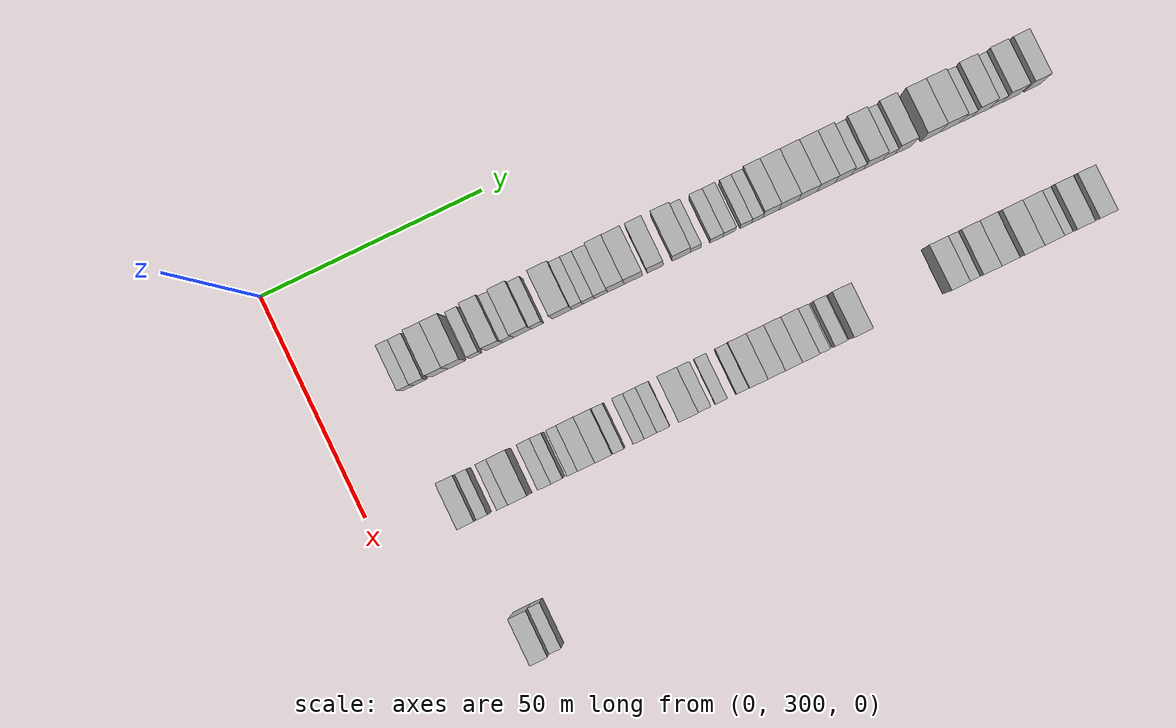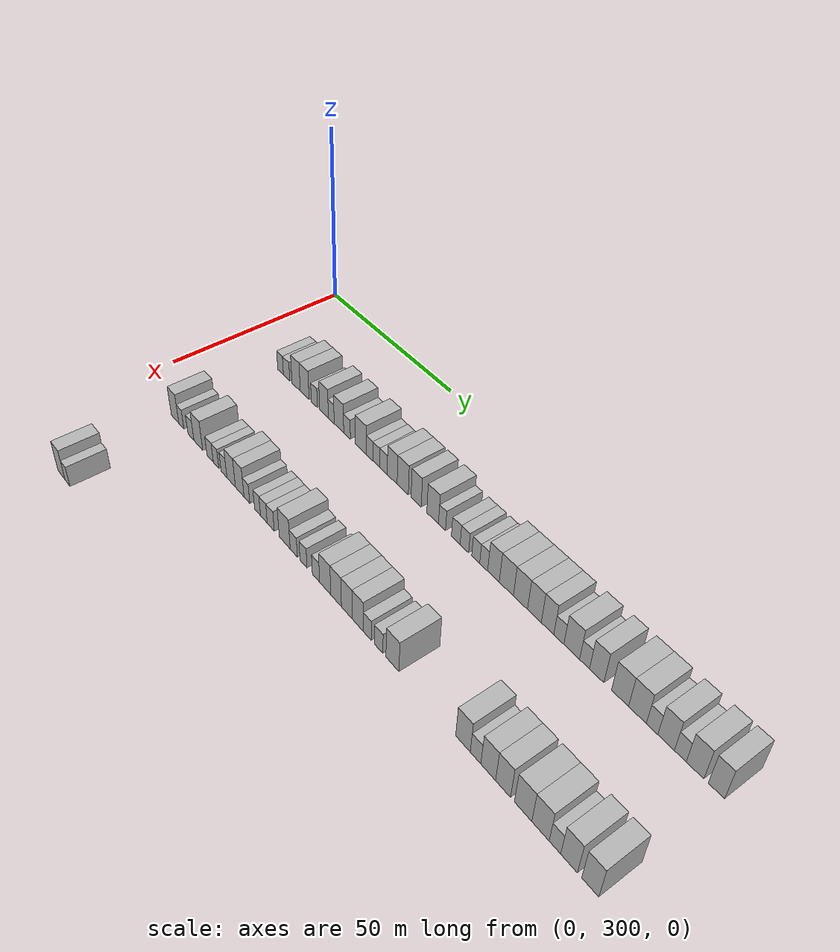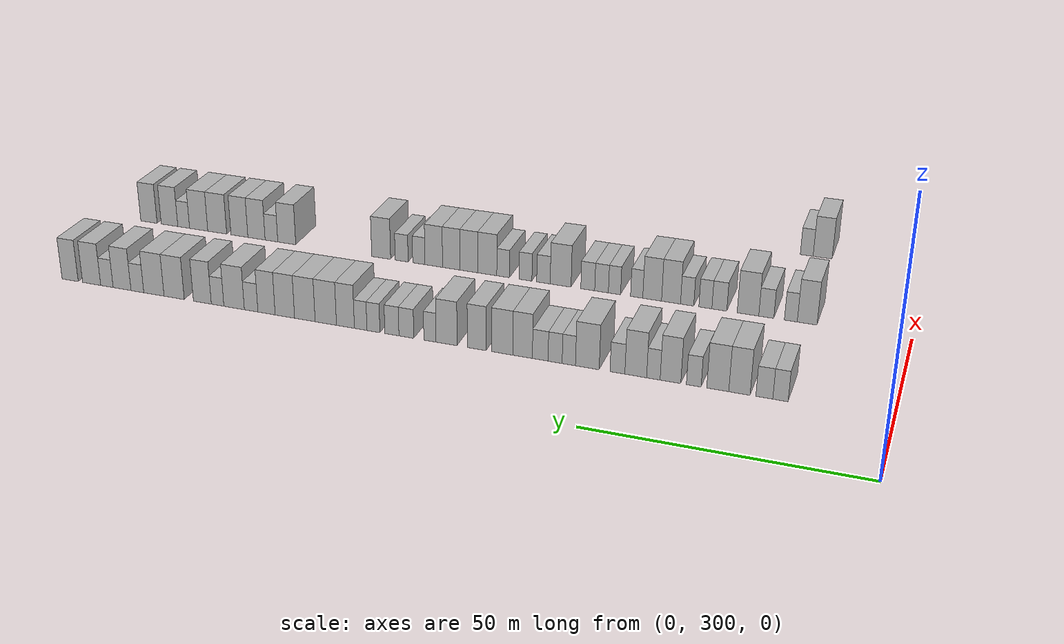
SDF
<sdf version="1.6">
 <world name="default">
  <model name="building_189">
   <static>1</static>
   <pose>25.0000 319.2529 0 0.000000 0.000000 0.000000</pose>
   <link name="link">
    <pose>0 0 3.00 0 0 0</pose>
    <collision name="collision"><geometry><box><size>10.0000 2.6458 6.0000</size></box></geometry></collision>
    <visual name="visual">
     <cast_shadows>0</cast_shadows>
     <geometry><box><size>10.0000 2.6458 6.0000</size></box></geometry>
     <material>
      <script>
       <uri>model://HANNAS_wall/materials/scripts</uri>
       <uri>model://HANNAS_wall/materials/textures</uri>
       <name>vrc/HANNAS_wall</name>
      </script>
     </material>
    </visual>
   </link>
  </model>
  <model name="building_190">
   <static>1</static>
   <pose>25.0000 322.0506 0 0.000000 0.000000 0.000000</pose>
   <link name="link">
    <pose>0 0 3.00 0 0 0</pose>
    <collision name="collision"><geometry><box><size>10.0000 2.9497 6.0000</size></box></geometry></collision>
    <visual name="visual">
     <cast_shadows>0</cast_shadows>
     <geometry><box><size>10.0000 2.9497 6.0000</size></box></geometry>
     <material>
      <script>
       <uri>model://HANNAS_wall/materials/scripts</uri>
       <uri>model://HANNAS_wall/materials/textures</uri>
       <name>vrc/HANNAS_wall</name>
      </script>
     </material>
    </visual>
   </link>
  </model>
  <model name="building_191">
   <static>1</static>
   <pose>25.0000 326.3966 0 0.000000 0.000000 0.000000</pose>
   <link name="link">
    <pose>0 0 4.50 0 0 0</pose>
    <collision name="collision"><geometry><box><size>10.0000 3.7424 9.0000</size></box></geometry></collision>
    <visual name="visual">
     <cast_shadows>0</cast_shadows>
     <geometry><box><size>10.0000 3.7424 9.0000</size></box></geometry>
     <material>
      <script>
       <uri>model://HANNAS_wall/materials/scripts</uri>
       <uri>model://HANNAS_wall/materials/textures</uri>
       <name>vrc/HANNAS_wall</name>
      </script>
     </material>
    </visual>
   </link>
  </model>
  <model name="building_192">
   <static>1</static>
   <pose>25.0000 330.2122 0 0.000000 0.000000 0.000000</pose>
   <link name="link">
    <pose>0 0 4.50 0 0 0</pose>
    <collision name="collision"><geometry><box><size>10.0000 3.8888 9.0000</size></box></geometry></collision>
    <visual name="visual">
     <cast_shadows>0</cast_shadows>
     <geometry><box><size>10.0000 3.8888 9.0000</size></box></geometry>
     <material>
      <script>
       <uri>model://HANNAS_wall/materials/scripts</uri>
       <uri>model://HANNAS_wall/materials/textures</uri>
       <name>vrc/HANNAS_wall</name>
      </script>
     </material>
    </visual>
   </link>
  </model>
  <model name="building_193">
   <static>1</static>
   <pose>25.0000 334.4716 0 0.000000 0.000000 0.000000</pose>
   <link name="link">
    <pose>0 0 3.00 0 0 0</pose>
    <collision name="collision"><geometry><box><size>10.0000 2.6299 6.0000</size></box></geometry></collision>
    <visual name="visual">
     <cast_shadows>0</cast_shadows>
     <geometry><box><size>10.0000 2.6299 6.0000</size></box></geometry>
     <material>
      <script>
       <uri>model://HANNAS_wall/materials/scripts</uri>
       <uri>model://HANNAS_wall/materials/textures</uri>
       <name>vrc/HANNAS_wall</name>
      </script>
     </material>
    </visual>
   </link>
  </model>
  <model name="building_194">
   <static>1</static>
   <pose>25.0000 338.6476 0 0.000000 0.000000 0.000000</pose>
   <link name="link">
    <pose>0 0 4.50 0 0 0</pose>
    <collision name="collision"><geometry><box><size>10.0000 3.7222 9.0000</size></box></geometry></collision>
    <visual name="visual">
     <cast_shadows>0</cast_shadows>
     <geometry><box><size>10.0000 3.7222 9.0000</size></box></geometry>
     <material>
      <script>
       <uri>model://HANNAS_wall/materials/scripts</uri>
       <uri>model://HANNAS_wall/materials/textures</uri>
       <name>vrc/HANNAS_wall</name>
      </script>
     </material>
    </visual>
   </link>
  </model>
  <model name="building_195">
   <static>1</static>
   <pose>25.0000 341.7327 0 0.000000 0.000000 0.000000</pose>
   <link name="link">
    <pose>0 0 3.00 0 0 0</pose>
    <collision name="collision"><geometry><box><size>10.0000 2.4480 6.0000</size></box></geometry></collision>
    <visual name="visual">
     <cast_shadows>0</cast_shadows>
     <geometry><box><size>10.0000 2.4480 6.0000</size></box></geometry>
     <material>
      <script>
       <uri>model://HANNAS_wall/materials/scripts</uri>
       <uri>model://HANNAS_wall/materials/textures</uri>
       <name>vrc/HANNAS_wall</name>
      </script>
     </material>
    </visual>
   </link>
  </model>
  <model name="building_196">
   <static>1</static>
   <pose>25.0000 344.9392 0 0.000000 0.000000 0.000000</pose>
   <link name="link">
    <pose>0 0 4.50 0 0 0</pose>
    <collision name="collision"><geometry><box><size>10.0000 3.9651 9.0000</size></box></geometry></collision>
    <visual name="visual">
     <cast_shadows>0</cast_shadows>
     <geometry><box><size>10.0000 3.9651 9.0000</size></box></geometry>
     <material>
      <script>
       <uri>model://HANNAS_wall/materials/scripts</uri>
       <uri>model://HANNAS_wall/materials/textures</uri>
       <name>vrc/HANNAS_wall</name>
      </script>
     </material>
    </visual>
   </link>
  </model>
  <model name="building_197">
   <static>1</static>
   <pose>25.0000 348.2840 0 0.000000 0.000000 0.000000</pose>
   <link name="link">
    <pose>0 0 3.00 0 0 0</pose>
    <collision name="collision"><geometry><box><size>10.0000 2.7245 6.0000</size></box></geometry></collision>
    <visual name="visual">
     <cast_shadows>0</cast_shadows>
     <geometry><box><size>10.0000 2.7245 6.0000</size></box></geometry>
     <material>
      <script>
       <uri>model://HANNAS_wall/materials/scripts</uri>
       <uri>model://HANNAS_wall/materials/textures</uri>
       <name>vrc/HANNAS_wall</name>
      </script>
     </material>
    </visual>
   </link>
  </model>
  <model name="building_198">
   <static>1</static>
   <pose>25.0000 353.8507 0 0.000000 0.000000 0.000000</pose>
   <link name="link">
    <pose>0 0 4.50 0 0 0</pose>
    <collision name="collision"><geometry><box><size>10.0000 4.4089 9.0000</size></box></geometry></collision>
    <visual name="visual">
     <cast_shadows>0</cast_shadows>
     <geometry><box><size>10.0000 4.4089 9.0000</size></box></geometry>
     <material>
      <script>
       <uri>model://HANNAS_wall/materials/scripts</uri>
       <uri>model://HANNAS_wall/materials/textures</uri>
       <name>vrc/HANNAS_wall</name>
      </script>
     </material>
    </visual>
   </link>
  </model>
  <model name="building_199">
   <static>1</static>
   <pose>25.0000 357.3013 0 0.000000 0.000000 0.000000</pose>
   <link name="link">
    <pose>0 0 3.00 0 0 0</pose>
    <collision name="collision"><geometry><box><size>10.0000 2.4924 6.0000</size></box></geometry></collision>
    <visual name="visual">
     <cast_shadows>0</cast_shadows>
     <geometry><box><size>10.0000 2.4924 6.0000</size></box></geometry>
     <material>
      <script>
       <uri>model://HANNAS_wall/materials/scripts</uri>
       <uri>model://HANNAS_wall/materials/textures</uri>
       <name>vrc/HANNAS_wall</name>
      </script>
     </material>
    </visual>
   </link>
  </model>
  <model name="building_200">
   <static>1</static>
   <pose>25.0000 359.8660 0 0.000000 0.000000 0.000000</pose>
   <link name="link">
    <pose>0 0 3.00 0 0 0</pose>
    <collision name="collision"><geometry><box><size>10.0000 2.6369 6.0000</size></box></geometry></collision>
    <visual name="visual">
     <cast_shadows>0</cast_shadows>
     <geometry><box><size>10.0000 2.6369 6.0000</size></box></geometry>
     <material>
      <script>
       <uri>model://HANNAS_wall/materials/scripts</uri>
       <uri>model://HANNAS_wall/materials/textures</uri>
       <name>vrc/HANNAS_wall</name>
      </script>
     </material>
    </visual>
   </link>
  </model>
  <model name="building_201">
   <static>1</static>
   <pose>25.0000 362.6691 0 0.000000 0.000000 0.000000</pose>
   <link name="link">
    <pose>0 0 3.00 0 0 0</pose>
    <collision name="collision"><geometry><box><size>10.0000 2.9695 6.0000</size></box></geometry></collision>
    <visual name="visual">
     <cast_shadows>0</cast_shadows>
     <geometry><box><size>10.0000 2.9695 6.0000</size></box></geometry>
     <material>
      <script>
       <uri>model://HANNAS_wall/materials/scripts</uri>
       <uri>model://HANNAS_wall/materials/textures</uri>
       <name>vrc/HANNAS_wall</name>
      </script>
     </material>
    </visual>
   </link>
  </model>
  <model name="building_202">
   <static>1</static>
   <pose>25.0000 366.0127 0 0.000000 0.000000 0.000000</pose>
   <link name="link">
    <pose>0 0 4.50 0 0 0</pose>
    <collision name="collision"><geometry><box><size>10.0000 3.7177 9.0000</size></box></geometry></collision>
    <visual name="visual">
     <cast_shadows>0</cast_shadows>
     <geometry><box><size>10.0000 3.7177 9.0000</size></box></geometry>
     <material>
      <script>
       <uri>model://HANNAS_wall/materials/scripts</uri>
       <uri>model://HANNAS_wall/materials/textures</uri>
       <name>vrc/HANNAS_wall</name>
      </script>
     </material>
    </visual>
   </link>
  </model>
  <model name="building_203">
   <static>1</static>
   <pose>25.0000 369.9389 0 0.000000 0.000000 0.000000</pose>
   <link name="link">
    <pose>0 0 4.50 0 0 0</pose>
    <collision name="collision"><geometry><box><size>10.0000 4.1347 9.0000</size></box></geometry></collision>
    <visual name="visual">
     <cast_shadows>0</cast_shadows>
     <geometry><box><size>10.0000 4.1347 9.0000</size></box></geometry>
     <material>
      <script>
       <uri>model://HANNAS_wall/materials/scripts</uri>
       <uri>model://HANNAS_wall/materials/textures</uri>
       <name>vrc/HANNAS_wall</name>
      </script>
     </material>
    </visual>
   </link>
  </model>
  <model name="building_204">
   <static>1</static>
   <pose>25.0000 374.8367 0 0.000000 0.000000 0.000000</pose>
   <link name="link">
    <pose>0 0 4.50 0 0 0</pose>
    <collision name="collision"><geometry><box><size>10.0000 3.6609 9.0000</size></box></geometry></collision>
    <visual name="visual">
     <cast_shadows>0</cast_shadows>
     <geometry><box><size>10.0000 3.6609 9.0000</size></box></geometry>
     <material>
      <script>
       <uri>model://HANNAS_wall/materials/scripts</uri>
       <uri>model://HANNAS_wall/materials/textures</uri>
       <name>vrc/HANNAS_wall</name>
      </script>
     </material>
    </visual>
   </link>
  </model>
  <model name="building_205">
   <static>1</static>
   <pose>25.0000 380.7238 0 0.000000 0.000000 0.000000</pose>
   <link name="link">
    <pose>0 0 4.50 0 0 0</pose>
    <collision name="collision"><geometry><box><size>10.0000 4.1133 9.0000</size></box></geometry></collision>
    <visual name="visual">
     <cast_shadows>0</cast_shadows>
     <geometry><box><size>10.0000 4.1133 9.0000</size></box></geometry>
     <material>
      <script>
       <uri>model://HANNAS_wall/materials/scripts</uri>
       <uri>model://HANNAS_wall/materials/textures</uri>
       <name>vrc/HANNAS_wall</name>
      </script>
     </material>
    </visual>
   </link>
  </model>
  <model name="building_206">
   <static>1</static>
   <pose>25.0000 383.9882 0 0.000000 0.000000 0.000000</pose>
   <link name="link">
    <pose>0 0 3.00 0 0 0</pose>
    <collision name="collision"><geometry><box><size>10.0000 2.4156 6.0000</size></box></geometry></collision>
    <visual name="visual">
     <cast_shadows>0</cast_shadows>
     <geometry><box><size>10.0000 2.4156 6.0000</size></box></geometry>
     <material>
      <script>
       <uri>model://HANNAS_wall/materials/scripts</uri>
       <uri>model://HANNAS_wall/materials/textures</uri>
       <name>vrc/HANNAS_wall</name>
      </script>
     </material>
    </visual>
   </link>
  </model>
  <model name="building_207">
   <static>1</static>
   <pose>25.0000 388.6744 0 0.000000 0.000000 0.000000</pose>
   <link name="link">
    <pose>0 0 3.00 0 0 0</pose>
    <collision name="collision"><geometry><box><size>10.0000 2.9569 6.0000</size></box></geometry></collision>
    <visual name="visual">
     <cast_shadows>0</cast_shadows>
     <geometry><box><size>10.0000 2.9569 6.0000</size></box></geometry>
     <material>
      <script>
       <uri>model://HANNAS_wall/materials/scripts</uri>
       <uri>model://HANNAS_wall/materials/textures</uri>
       <name>vrc/HANNAS_wall</name>
      </script>
     </material>
    </visual>
   </link>
  </model>
  <model name="building_208">
   <static>1</static>
   <pose>25.0000 391.5643 0 0.000000 0.000000 0.000000</pose>
   <link name="link">
    <pose>0 0 3.00 0 0 0</pose>
    <collision name="collision"><geometry><box><size>10.0000 2.8229 6.0000</size></box></geometry></collision>
    <visual name="visual">
     <cast_shadows>0</cast_shadows>
     <geometry><box><size>10.0000 2.8229 6.0000</size></box></geometry>
     <material>
      <script>
       <uri>model://HANNAS_wall/materials/scripts</uri>
       <uri>model://HANNAS_wall/materials/textures</uri>
       <name>vrc/HANNAS_wall</name>
      </script>
     </material>
    </visual>
   </link>
  </model>
  <model name="building_209">
   <static>1</static>
   <pose>25.0000 395.2826 0 0.000000 0.000000 0.000000</pose>
   <link name="link">
    <pose>0 0 3.00 0 0 0</pose>
    <collision name="collision"><geometry><box><size>10.0000 2.6137 6.0000</size></box></geometry></collision>
    <visual name="visual">
     <cast_shadows>0</cast_shadows>
     <geometry><box><size>10.0000 2.6137 6.0000</size></box></geometry>
     <material>
      <script>
       <uri>model://HANNAS_wall/materials/scripts</uri>
       <uri>model://HANNAS_wall/materials/textures</uri>
       <name>vrc/HANNAS_wall</name>
      </script>
     </material>
    </visual>
   </link>
  </model>
  <model name="building_210">
   <static>1</static>
   <pose>25.0000 397.8622 0 0.000000 0.000000 0.000000</pose>
   <link name="link">
    <pose>0 0 3.00 0 0 0</pose>
    <collision name="collision"><geometry><box><size>10.0000 2.5455 6.0000</size></box></geometry></collision>
    <visual name="visual">
     <cast_shadows>0</cast_shadows>
     <geometry><box><size>10.0000 2.5455 6.0000</size></box></geometry>
     <material>
      <script>
       <uri>model://HANNAS_wall/materials/scripts</uri>
       <uri>model://HANNAS_wall/materials/textures</uri>
       <name>vrc/HANNAS_wall</name>
      </script>
     </material>
    </visual>
   </link>
  </model>
  <model name="building_211">
   <static>1</static>
   <pose>25.0000 400.9672 0 0.000000 0.000000 0.000000</pose>
   <link name="link">
    <pose>0 0 4.50 0 0 0</pose>
    <collision name="collision"><geometry><box><size>10.0000 3.6644 9.0000</size></box></geometry></collision>
    <visual name="visual">
     <cast_shadows>0</cast_shadows>
     <geometry><box><size>10.0000 3.6644 9.0000</size></box></geometry>
     <material>
      <script>
       <uri>model://HANNAS_wall/materials/scripts</uri>
       <uri>model://HANNAS_wall/materials/textures</uri>
       <name>vrc/HANNAS_wall</name>
      </script>
     </material>
    </visual>
   </link>
  </model>
  <model name="building_212">
   <static>1</static>
   <pose>25.0000 404.9972 0 0.000000 0.000000 0.000000</pose>
   <link name="link">
    <pose>0 0 4.50 0 0 0</pose>
    <collision name="collision"><geometry><box><size>10.0000 4.3956 9.0000</size></box></geometry></collision>
    <visual name="visual">
     <cast_shadows>0</cast_shadows>
     <geometry><box><size>10.0000 4.3956 9.0000</size></box></geometry>
     <material>
      <script>
       <uri>model://HANNAS_wall/materials/scripts</uri>
       <uri>model://HANNAS_wall/materials/textures</uri>
       <name>vrc/HANNAS_wall</name>
      </script>
     </material>
    </visual>
   </link>
  </model>
  <model name="building_213">
   <static>1</static>
   <pose>25.0000 409.3300 0 0.000000 0.000000 0.000000</pose>
   <link name="link">
    <pose>0 0 4.50 0 0 0</pose>
    <collision name="collision"><geometry><box><size>10.0000 4.2699 9.0000</size></box></geometry></collision>
    <visual name="visual">
     <cast_shadows>0</cast_shadows>
     <geometry><box><size>10.0000 4.2699 9.0000</size></box></geometry>
     <material>
      <script>
       <uri>model://HANNAS_wall/materials/scripts</uri>
       <uri>model://HANNAS_wall/materials/textures</uri>
       <name>vrc/HANNAS_wall</name>
      </script>
     </material>
    </visual>
   </link>
  </model>
  <model name="building_214">
   <static>1</static>
   <pose>25.0000 413.5016 0 0.000000 0.000000 0.000000</pose>
   <link name="link">
    <pose>0 0 4.50 0 0 0</pose>
    <collision name="collision"><geometry><box><size>10.0000 4.0733 9.0000</size></box></geometry></collision>
    <visual name="visual">
     <cast_shadows>0</cast_shadows>
     <geometry><box><size>10.0000 4.0733 9.0000</size></box></geometry>
     <material>
      <script>
       <uri>model://HANNAS_wall/materials/scripts</uri>
       <uri>model://HANNAS_wall/materials/textures</uri>
       <name>vrc/HANNAS_wall</name>
      </script>
     </material>
    </visual>
   </link>
  </model>
  <model name="building_215">
   <static>1</static>
   <pose>25.0000 417.3595 0 0.000000 0.000000 0.000000</pose>
   <link name="link">
    <pose>0 0 4.50 0 0 0</pose>
    <collision name="collision"><geometry><box><size>10.0000 3.6426 9.0000</size></box></geometry></collision>
    <visual name="visual">
     <cast_shadows>0</cast_shadows>
     <geometry><box><size>10.0000 3.6426 9.0000</size></box></geometry>
     <material>
      <script>
       <uri>model://HANNAS_wall/materials/scripts</uri>
       <uri>model://HANNAS_wall/materials/textures</uri>
       <name>vrc/HANNAS_wall</name>
      </script>
     </material>
    </visual>
   </link>
  </model>
  <model name="building_216">
   <static>1</static>
   <pose>25.0000 420.6198 0 0.000000 0.000000 0.000000</pose>
   <link name="link">
    <pose>0 0 3.00 0 0 0</pose>
    <collision name="collision"><geometry><box><size>10.0000 2.8780 6.0000</size></box></geometry></collision>
    <visual name="visual">
     <cast_shadows>0</cast_shadows>
     <geometry><box><size>10.0000 2.8780 6.0000</size></box></geometry>
     <material>
      <script>
       <uri>model://HANNAS_wall/materials/scripts</uri>
       <uri>model://HANNAS_wall/materials/textures</uri>
       <name>vrc/HANNAS_wall</name>
      </script>
     </material>
    </visual>
   </link>
  </model>
  <model name="building_217">
   <static>1</static>
   <pose>25.0000 424.2506 0 0.000000 0.000000 0.000000</pose>
   <link name="link">
    <pose>0 0 4.50 0 0 0</pose>
    <collision name="collision"><geometry><box><size>10.0000 4.3836 9.0000</size></box></geometry></collision>
    <visual name="visual">
     <cast_shadows>0</cast_shadows>
     <geometry><box><size>10.0000 4.3836 9.0000</size></box></geometry>
     <material>
      <script>
       <uri>model://HANNAS_wall/materials/scripts</uri>
       <uri>model://HANNAS_wall/materials/textures</uri>
       <name>vrc/HANNAS_wall</name>
      </script>
     </material>
    </visual>
   </link>
  </model>
  <model name="building_218">
   <static>1</static>
   <pose>25.0000 427.7940 0 0.000000 0.000000 0.000000</pose>
   <link name="link">
    <pose>0 0 3.00 0 0 0</pose>
    <collision name="collision"><geometry><box><size>10.0000 2.7031 6.0000</size></box></geometry></collision>
    <visual name="visual">
     <cast_shadows>0</cast_shadows>
     <geometry><box><size>10.0000 2.7031 6.0000</size></box></geometry>
     <material>
      <script>
       <uri>model://HANNAS_wall/materials/scripts</uri>
       <uri>model://HANNAS_wall/materials/textures</uri>
       <name>vrc/HANNAS_wall</name>
      </script>
     </material>
    </visual>
   </link>
  </model>
  <model name="building_219">
   <static>1</static>
   <pose>25.0000 431.0830 0 0.000000 0.000000 0.000000</pose>
   <link name="link">
    <pose>0 0 4.50 0 0 0</pose>
    <collision name="collision"><geometry><box><size>10.0000 3.8747 9.0000</size></box></geometry></collision>
    <visual name="visual">
     <cast_shadows>0</cast_shadows>
     <geometry><box><size>10.0000 3.8747 9.0000</size></box></geometry>
     <material>
      <script>
       <uri>model://HANNAS_wall/materials/scripts</uri>
       <uri>model://HANNAS_wall/materials/textures</uri>
       <name>vrc/HANNAS_wall</name>
      </script>
     </material>
    </visual>
   </link>
  </model>
  <model name="building_220">
   <static>1</static>
   <pose>25.0000 437.2364 0 0.000000 0.000000 0.000000</pose>
   <link name="link">
    <pose>0 0 4.50 0 0 0</pose>
    <collision name="collision"><geometry><box><size>10.0000 4.4322 9.0000</size></box></geometry></collision>
    <visual name="visual">
     <cast_shadows>0</cast_shadows>
     <geometry><box><size>10.0000 4.4322 9.0000</size></box></geometry>
     <material>
      <script>
       <uri>model://HANNAS_wall/materials/scripts</uri>
       <uri>model://HANNAS_wall/materials/textures</uri>
       <name>vrc/HANNAS_wall</name>
      </script>
     </material>
    </visual>
   </link>
  </model>
  <model name="building_221">
   <static>1</static>
   <pose>25.0000 441.6965 0 0.000000 0.000000 0.000000</pose>
   <link name="link">
    <pose>0 0 4.50 0 0 0</pose>
    <collision name="collision"><geometry><box><size>10.0000 4.4881 9.0000</size></box></geometry></collision>
    <visual name="visual">
     <cast_shadows>0</cast_shadows>
     <geometry><box><size>10.0000 4.4881 9.0000</size></box></geometry>
     <material>
      <script>
       <uri>model://HANNAS_wall/materials/scripts</uri>
       <uri>model://HANNAS_wall/materials/textures</uri>
       <name>vrc/HANNAS_wall</name>
      </script>
     </material>
    </visual>
   </link>
  </model>
  <model name="building_222">
   <static>1</static>
   <pose>25.0000 445.3619 0 0.000000 0.000000 0.000000</pose>
   <link name="link">
    <pose>0 0 3.00 0 0 0</pose>
    <collision name="collision"><geometry><box><size>10.0000 2.8427 6.0000</size></box></geometry></collision>
    <visual name="visual">
     <cast_shadows>0</cast_shadows>
     <geometry><box><size>10.0000 2.8427 6.0000</size></box></geometry>
     <material>
      <script>
       <uri>model://HANNAS_wall/materials/scripts</uri>
       <uri>model://HANNAS_wall/materials/textures</uri>
       <name>vrc/HANNAS_wall</name>
      </script>
     </material>
    </visual>
   </link>
  </model>
  <model name="building_223">
   <static>1</static>
   <pose>25.0000 448.7875 0 0.000000 0.000000 0.000000</pose>
   <link name="link">
    <pose>0 0 4.50 0 0 0</pose>
    <collision name="collision"><geometry><box><size>10.0000 4.0086 9.0000</size></box></geometry></collision>
    <visual name="visual">
     <cast_shadows>0</cast_shadows>
     <geometry><box><size>10.0000 4.0086 9.0000</size></box></geometry>
     <material>
      <script>
       <uri>model://HANNAS_wall/materials/scripts</uri>
       <uri>model://HANNAS_wall/materials/textures</uri>
       <name>vrc/HANNAS_wall</name>
      </script>
     </material>
    </visual>
   </link>
  </model>
  <model name="building_224">
   <static>1</static>
   <pose>25.0000 452.1931 0 0.000000 0.000000 0.000000</pose>
   <link name="link">
    <pose>0 0 3.00 0 0 0</pose>
    <collision name="collision"><geometry><box><size>10.0000 2.8027 6.0000</size></box></geometry></collision>
    <visual name="visual">
     <cast_shadows>0</cast_shadows>
     <geometry><box><size>10.0000 2.8027 6.0000</size></box></geometry>
     <material>
      <script>
       <uri>model://HANNAS_wall/materials/scripts</uri>
       <uri>model://HANNAS_wall/materials/textures</uri>
       <name>vrc/HANNAS_wall</name>
      </script>
     </material>
    </visual>
   </link>
  </model>
  <model name="building_225">
   <static>1</static>
   <pose>25.0000 455.6488 0 0.000000 0.000000 0.000000</pose>
   <link name="link">
    <pose>0 0 4.50 0 0 0</pose>
    <collision name="collision"><geometry><box><size>10.0000 4.1085 9.0000</size></box></geometry></collision>
    <visual name="visual">
     <cast_shadows>0</cast_shadows>
     <geometry><box><size>10.0000 4.1085 9.0000</size></box></geometry>
     <material>
      <script>
       <uri>model://HANNAS_wall/materials/scripts</uri>
       <uri>model://HANNAS_wall/materials/textures</uri>
       <name>vrc/HANNAS_wall</name>
      </script>
     </material>
    </visual>
   </link>
  </model>
  <model name="building_226">
   <static>1</static>
   <pose>25.0000 460.5493 0 0.000000 0.000000 0.000000</pose>
   <link name="link">
    <pose>0 0 4.50 0 0 0</pose>
    <collision name="collision"><geometry><box><size>10.0000 3.6926 9.0000</size></box></geometry></collision>
    <visual name="visual">
     <cast_shadows>0</cast_shadows>
     <geometry><box><size>10.0000 3.6926 9.0000</size></box></geometry>
     <material>
      <script>
       <uri>model://HANNAS_wall/materials/scripts</uri>
       <uri>model://HANNAS_wall/materials/textures</uri>
       <name>vrc/HANNAS_wall</name>
      </script>
     </material>
    </visual>
   </link>
  </model>
  <model name="building_426">
   <static>1</static>
   <pose>55.0000 319.3592 0 0.000000 0.000000 0.000000</pose>
   <link name="link">
    <pose>0 0 4.50 0 0 0</pose>
    <collision name="collision"><geometry><box><size>10.0000 3.7169 9.0000</size></box></geometry></collision>
    <visual name="visual">
     <cast_shadows>0</cast_shadows>
     <geometry><box><size>10.0000 3.7169 9.0000</size></box></geometry>
     <material>
      <script>
       <uri>model://HANNAS_wall/materials/scripts</uri>
       <uri>model://HANNAS_wall/materials/textures</uri>
       <name>vrc/HANNAS_wall</name>
      </script>
     </material>
    </visual>
   </link>
  </model>
  <model name="building_427">
   <static>1</static>
   <pose>55.0000 322.4355 0 0.000000 0.000000 0.000000</pose>
   <link name="link">
    <pose>0 0 3.00 0 0 0</pose>
    <collision name="collision"><geometry><box><size>10.0000 2.4356 6.0000</size></box></geometry></collision>
    <visual name="visual">
     <cast_shadows>0</cast_shadows>
     <geometry><box><size>10.0000 2.4356 6.0000</size></box></geometry>
     <material>
      <script>
       <uri>model://HANNAS_wall/materials/scripts</uri>
       <uri>model://HANNAS_wall/materials/textures</uri>
       <name>vrc/HANNAS_wall</name>
      </script>
     </material>
    </visual>
   </link>
  </model>
  <model name="building_428">
   <static>1</static>
   <pose>55.0000 327.0862 0 0.000000 0.000000 0.000000</pose>
   <link name="link">
    <pose>0 0 3.00 0 0 0</pose>
    <collision name="collision"><geometry><box><size>10.0000 2.8658 6.0000</size></box></geometry></collision>
    <visual name="visual">
     <cast_shadows>0</cast_shadows>
     <geometry><box><size>10.0000 2.8658 6.0000</size></box></geometry>
     <material>
      <script>
       <uri>model://HANNAS_wall/materials/scripts</uri>
       <uri>model://HANNAS_wall/materials/textures</uri>
       <name>vrc/HANNAS_wall</name>
      </script>
     </material>
    </visual>
   </link>
  </model>
  <model name="building_429">
   <static>1</static>
   <pose>55.0000 330.5941 0 0.000000 0.000000 0.000000</pose>
   <link name="link">
    <pose>0 0 4.50 0 0 0</pose>
    <collision name="collision"><geometry><box><size>10.0000 4.1501 9.0000</size></box></geometry></collision>
    <visual name="visual">
     <cast_shadows>0</cast_shadows>
     <geometry><box><size>10.0000 4.1501 9.0000</size></box></geometry>
     <material>
      <script>
       <uri>model://HANNAS_wall/materials/scripts</uri>
       <uri>model://HANNAS_wall/materials/textures</uri>
       <name>vrc/HANNAS_wall</name>
      </script>
     </material>
    </visual>
   </link>
  </model>
  <model name="building_430">
   <static>1</static>
   <pose>55.0000 336.1144 0 0.000000 0.000000 0.000000</pose>
   <link name="link">
    <pose>0 0 3.00 0 0 0</pose>
    <collision name="collision"><geometry><box><size>10.0000 2.8905 6.0000</size></box></geometry></collision>
    <visual name="visual">
     <cast_shadows>0</cast_shadows>
     <geometry><box><size>10.0000 2.8905 6.0000</size></box></geometry>
     <material>
      <script>
       <uri>model://HANNAS_wall/materials/scripts</uri>
       <uri>model://HANNAS_wall/materials/textures</uri>
       <name>vrc/HANNAS_wall</name>
      </script>
     </material>
    </visual>
   </link>
  </model>
  <model name="building_431">
   <static>1</static>
   <pose>55.0000 338.8283 0 0.000000 0.000000 0.000000</pose>
   <link name="link">
    <pose>0 0 3.00 0 0 0</pose>
    <collision name="collision"><geometry><box><size>10.0000 2.5372 6.0000</size></box></geometry></collision>
    <visual name="visual">
     <cast_shadows>0</cast_shadows>
     <geometry><box><size>10.0000 2.5372 6.0000</size></box></geometry>
     <material>
      <script>
       <uri>model://HANNAS_wall/materials/scripts</uri>
       <uri>model://HANNAS_wall/materials/textures</uri>
       <name>vrc/HANNAS_wall</name>
      </script>
     </material>
    </visual>
   </link>
  </model>
  <model name="building_432">
   <static>1</static>
   <pose>55.0000 342.3957 0 0.000000 0.000000 0.000000</pose>
   <link name="link">
    <pose>0 0 3.00 0 0 0</pose>
    <collision name="collision"><geometry><box><size>10.0000 2.5977 6.0000</size></box></geometry></collision>
    <visual name="visual">
     <cast_shadows>0</cast_shadows>
     <geometry><box><size>10.0000 2.5977 6.0000</size></box></geometry>
     <material>
      <script>
       <uri>model://HANNAS_wall/materials/scripts</uri>
       <uri>model://HANNAS_wall/materials/textures</uri>
       <name>vrc/HANNAS_wall</name>
      </script>
     </material>
    </visual>
   </link>
  </model>
  <model name="building_433">
   <static>1</static>
   <pose>55.0000 345.5697 0 0.000000 0.000000 0.000000</pose>
   <link name="link">
    <pose>0 0 4.50 0 0 0</pose>
    <collision name="collision"><geometry><box><size>10.0000 3.7504 9.0000</size></box></geometry></collision>
    <visual name="visual">
     <cast_shadows>0</cast_shadows>
     <geometry><box><size>10.0000 3.7504 9.0000</size></box></geometry>
     <material>
      <script>
       <uri>model://HANNAS_wall/materials/scripts</uri>
       <uri>model://HANNAS_wall/materials/textures</uri>
       <name>vrc/HANNAS_wall</name>
      </script>
     </material>
    </visual>
   </link>
  </model>
  <model name="building_434">
   <static>1</static>
   <pose>55.0000 349.3110 0 0.000000 0.000000 0.000000</pose>
   <link name="link">
    <pose>0 0 4.50 0 0 0</pose>
    <collision name="collision"><geometry><box><size>10.0000 3.7321 9.0000</size></box></geometry></collision>
    <visual name="visual">
     <cast_shadows>0</cast_shadows>
     <geometry><box><size>10.0000 3.7321 9.0000</size></box></geometry>
     <material>
      <script>
       <uri>model://HANNAS_wall/materials/scripts</uri>
       <uri>model://HANNAS_wall/materials/textures</uri>
       <name>vrc/HANNAS_wall</name>
      </script>
     </material>
    </visual>
   </link>
  </model>
  <model name="building_435">
   <static>1</static>
   <pose>55.0000 352.4040 0 0.000000 0.000000 0.000000</pose>
   <link name="link">
    <pose>0 0 3.00 0 0 0</pose>
    <collision name="collision"><geometry><box><size>10.0000 2.4540 6.0000</size></box></geometry></collision>
    <visual name="visual">
     <cast_shadows>0</cast_shadows>
     <geometry><box><size>10.0000 2.4540 6.0000</size></box></geometry>
     <material>
      <script>
       <uri>model://HANNAS_wall/materials/scripts</uri>
       <uri>model://HANNAS_wall/materials/textures</uri>
       <name>vrc/HANNAS_wall</name>
      </script>
     </material>
    </visual>
   </link>
  </model>
  <model name="building_436">
   <static>1</static>
   <pose>55.0000 356.8590 0 0.000000 0.000000 0.000000</pose>
   <link name="link">
    <pose>0 0 3.00 0 0 0</pose>
    <collision name="collision"><geometry><box><size>10.0000 2.4561 6.0000</size></box></geometry></collision>
    <visual name="visual">
     <cast_shadows>0</cast_shadows>
     <geometry><box><size>10.0000 2.4561 6.0000</size></box></geometry>
     <material>
      <script>
       <uri>model://HANNAS_wall/materials/scripts</uri>
       <uri>model://HANNAS_wall/materials/textures</uri>
       <name>vrc/HANNAS_wall</name>
      </script>
     </material>
    </visual>
   </link>
  </model>
  <model name="building_437">
   <static>1</static>
   <pose>55.0000 359.4740 0 0.000000 0.000000 0.000000</pose>
   <link name="link">
    <pose>0 0 3.00 0 0 0</pose>
    <collision name="collision"><geometry><box><size>10.0000 2.7739 6.0000</size></box></geometry></collision>
    <visual name="visual">
     <cast_shadows>0</cast_shadows>
     <geometry><box><size>10.0000 2.7739 6.0000</size></box></geometry>
     <material>
      <script>
       <uri>model://HANNAS_wall/materials/scripts</uri>
       <uri>model://HANNAS_wall/materials/textures</uri>
       <name>vrc/HANNAS_wall</name>
      </script>
     </material>
    </visual>
   </link>
  </model>
  <model name="building_438">
   <static>1</static>
   <pose>55.0000 362.2789 0 0.000000 0.000000 0.000000</pose>
   <link name="link">
    <pose>0 0 3.00 0 0 0</pose>
    <collision name="collision"><geometry><box><size>10.0000 2.8358 6.0000</size></box></geometry></collision>
    <visual name="visual">
     <cast_shadows>0</cast_shadows>
     <geometry><box><size>10.0000 2.8358 6.0000</size></box></geometry>
     <material>
      <script>
       <uri>model://HANNAS_wall/materials/scripts</uri>
       <uri>model://HANNAS_wall/materials/textures</uri>
       <name>vrc/HANNAS_wall</name>
      </script>
     </material>
    </visual>
   </link>
  </model>
  <model name="building_439">
   <static>1</static>
   <pose>55.0000 367.8459 0 0.000000 0.000000 0.000000</pose>
   <link name="link">
    <pose>0 0 4.50 0 0 0</pose>
    <collision name="collision"><geometry><box><size>10.0000 4.2982 9.0000</size></box></geometry></collision>
    <visual name="visual">
     <cast_shadows>0</cast_shadows>
     <geometry><box><size>10.0000 4.2982 9.0000</size></box></geometry>
     <material>
      <script>
       <uri>model://HANNAS_wall/materials/scripts</uri>
       <uri>model://HANNAS_wall/materials/textures</uri>
       <name>vrc/HANNAS_wall</name>
      </script>
     </material>
    </visual>
   </link>
  </model>
  <model name="building_440">
   <static>1</static>
   <pose>55.0000 371.3918 0 0.000000 0.000000 0.000000</pose>
   <link name="link">
    <pose>0 0 3.00 0 0 0</pose>
    <collision name="collision"><geometry><box><size>10.0000 2.7935 6.0000</size></box></geometry></collision>
    <visual name="visual">
     <cast_shadows>0</cast_shadows>
     <geometry><box><size>10.0000 2.7935 6.0000</size></box></geometry>
     <material>
      <script>
       <uri>model://HANNAS_wall/materials/scripts</uri>
       <uri>model://HANNAS_wall/materials/textures</uri>
       <name>vrc/HANNAS_wall</name>
      </script>
     </material>
    </visual>
   </link>
  </model>
  <model name="building_441">
   <static>1</static>
   <pose>55.0000 375.1184 0 0.000000 0.000000 0.000000</pose>
   <link name="link">
    <pose>0 0 3.00 0 0 0</pose>
    <collision name="collision"><geometry><box><size>10.0000 2.6599 6.0000</size></box></geometry></collision>
    <visual name="visual">
     <cast_shadows>0</cast_shadows>
     <geometry><box><size>10.0000 2.6599 6.0000</size></box></geometry>
     <material>
      <script>
       <uri>model://HANNAS_wall/materials/scripts</uri>
       <uri>model://HANNAS_wall/materials/textures</uri>
       <name>vrc/HANNAS_wall</name>
      </script>
     </material>
    </visual>
   </link>
  </model>
  <model name="building_442">
   <static>1</static>
   <pose>55.0000 379.8037 0 0.000000 0.000000 0.000000</pose>
   <link name="link">
    <pose>0 0 3.00 0 0 0</pose>
    <collision name="collision"><geometry><box><size>10.0000 2.7107 6.0000</size></box></geometry></collision>
    <visual name="visual">
     <cast_shadows>0</cast_shadows>
     <geometry><box><size>10.0000 2.7107 6.0000</size></box></geometry>
     <material>
      <script>
       <uri>model://HANNAS_wall/materials/scripts</uri>
       <uri>model://HANNAS_wall/materials/textures</uri>
       <name>vrc/HANNAS_wall</name>
      </script>
     </material>
    </visual>
   </link>
  </model>
  <model name="building_443">
   <static>1</static>
   <pose>55.0000 383.1775 0 0.000000 0.000000 0.000000</pose>
   <link name="link">
    <pose>0 0 4.50 0 0 0</pose>
    <collision name="collision"><geometry><box><size>10.0000 4.0368 9.0000</size></box></geometry></collision>
    <visual name="visual">
     <cast_shadows>0</cast_shadows>
     <geometry><box><size>10.0000 4.0368 9.0000</size></box></geometry>
     <material>
      <script>
       <uri>model://HANNAS_wall/materials/scripts</uri>
       <uri>model://HANNAS_wall/materials/textures</uri>
       <name>vrc/HANNAS_wall</name>
      </script>
     </material>
    </visual>
   </link>
  </model>
  <model name="building_444">
   <static>1</static>
   <pose>55.0000 387.0927 0 0.000000 0.000000 0.000000</pose>
   <link name="link">
    <pose>0 0 4.50 0 0 0</pose>
    <collision name="collision"><geometry><box><size>10.0000 3.7936 9.0000</size></box></geometry></collision>
    <visual name="visual">
     <cast_shadows>0</cast_shadows>
     <geometry><box><size>10.0000 3.7936 9.0000</size></box></geometry>
     <material>
      <script>
       <uri>model://HANNAS_wall/materials/scripts</uri>
       <uri>model://HANNAS_wall/materials/textures</uri>
       <name>vrc/HANNAS_wall</name>
      </script>
     </material>
    </visual>
   </link>
  </model>
  <model name="building_445">
   <static>1</static>
   <pose>55.0000 390.8642 0 0.000000 0.000000 0.000000</pose>
   <link name="link">
    <pose>0 0 4.50 0 0 0</pose>
    <collision name="collision"><geometry><box><size>10.0000 3.7494 9.0000</size></box></geometry></collision>
    <visual name="visual">
     <cast_shadows>0</cast_shadows>
     <geometry><box><size>10.0000 3.7494 9.0000</size></box></geometry>
     <material>
      <script>
       <uri>model://HANNAS_wall/materials/scripts</uri>
       <uri>model://HANNAS_wall/materials/textures</uri>
       <name>vrc/HANNAS_wall</name>
      </script>
     </material>
    </visual>
   </link>
  </model>
  <model name="building_446">
   <static>1</static>
   <pose>55.0000 394.6418 0 0.000000 0.000000 0.000000</pose>
   <link name="link">
    <pose>0 0 4.50 0 0 0</pose>
    <collision name="collision"><geometry><box><size>10.0000 3.8059 9.0000</size></box></geometry></collision>
    <visual name="visual">
     <cast_shadows>0</cast_shadows>
     <geometry><box><size>10.0000 3.8059 9.0000</size></box></geometry>
     <material>
      <script>
       <uri>model://HANNAS_wall/materials/scripts</uri>
       <uri>model://HANNAS_wall/materials/textures</uri>
       <name>vrc/HANNAS_wall</name>
      </script>
     </material>
    </visual>
   </link>
  </model>
  <model name="building_447">
   <static>1</static>
   <pose>55.0000 397.8783 0 0.000000 0.000000 0.000000</pose>
   <link name="link">
    <pose>0 0 3.00 0 0 0</pose>
    <collision name="collision"><geometry><box><size>10.0000 2.6670 6.0000</size></box></geometry></collision>
    <visual name="visual">
     <cast_shadows>0</cast_shadows>
     <geometry><box><size>10.0000 2.6670 6.0000</size></box></geometry>
     <material>
      <script>
       <uri>model://HANNAS_wall/materials/scripts</uri>
       <uri>model://HANNAS_wall/materials/textures</uri>
       <name>vrc/HANNAS_wall</name>
      </script>
     </material>
    </visual>
   </link>
  </model>
  <model name="building_448">
   <static>1</static>
   <pose>55.0000 401.6317 0 0.000000 0.000000 0.000000</pose>
   <link name="link">
    <pose>0 0 3.00 0 0 0</pose>
    <collision name="collision"><geometry><box><size>10.0000 2.8397 6.0000</size></box></geometry></collision>
    <visual name="visual">
     <cast_shadows>0</cast_shadows>
     <geometry><box><size>10.0000 2.8397 6.0000</size></box></geometry>
     <material>
      <script>
       <uri>model://HANNAS_wall/materials/scripts</uri>
       <uri>model://HANNAS_wall/materials/textures</uri>
       <name>vrc/HANNAS_wall</name>
      </script>
     </material>
    </visual>
   </link>
  </model>
  <model name="building_449">
   <static>1</static>
   <pose>55.0000 406.1414 0 0.000000 0.000000 0.000000</pose>
   <link name="link">
    <pose>0 0 4.50 0 0 0</pose>
    <collision name="collision"><geometry><box><size>10.0000 4.1797 9.0000</size></box></geometry></collision>
    <visual name="visual">
     <cast_shadows>0</cast_shadows>
     <geometry><box><size>10.0000 4.1797 9.0000</size></box></geometry>
     <material>
      <script>
       <uri>model://HANNAS_wall/materials/scripts</uri>
       <uri>model://HANNAS_wall/materials/textures</uri>
       <name>vrc/HANNAS_wall</name>
      </script>
     </material>
    </visual>
   </link>
  </model>
  <model name="building_450">
   <static>1</static>
   <pose>55.0000 427.4276 0 0.000000 0.000000 0.000000</pose>
   <link name="link">
    <pose>0 0 4.50 0 0 0</pose>
    <collision name="collision"><geometry><box><size>10.0000 4.1309 9.0000</size></box></geometry></collision>
    <visual name="visual">
     <cast_shadows>0</cast_shadows>
     <geometry><box><size>10.0000 4.1309 9.0000</size></box></geometry>
     <material>
      <script>
       <uri>model://HANNAS_wall/materials/scripts</uri>
       <uri>model://HANNAS_wall/materials/textures</uri>
       <name>vrc/HANNAS_wall</name>
      </script>
     </material>
    </visual>
   </link>
  </model>
  <model name="building_451">
   <static>1</static>
   <pose>55.0000 430.9578 0 0.000000 0.000000 0.000000</pose>
   <link name="link">
    <pose>0 0 3.00 0 0 0</pose>
    <collision name="collision"><geometry><box><size>10.0000 2.9294 6.0000</size></box></geometry></collision>
    <visual name="visual">
     <cast_shadows>0</cast_shadows>
     <geometry><box><size>10.0000 2.9294 6.0000</size></box></geometry>
     <material>
      <script>
       <uri>model://HANNAS_wall/materials/scripts</uri>
       <uri>model://HANNAS_wall/materials/textures</uri>
       <name>vrc/HANNAS_wall</name>
      </script>
     </material>
    </visual>
   </link>
  </model>
  <model name="building_452">
   <static>1</static>
   <pose>55.0000 434.4286 0 0.000000 0.000000 0.000000</pose>
   <link name="link">
    <pose>0 0 4.50 0 0 0</pose>
    <collision name="collision"><geometry><box><size>10.0000 4.0122 9.0000</size></box></geometry></collision>
    <visual name="visual">
     <cast_shadows>0</cast_shadows>
     <geometry><box><size>10.0000 4.0122 9.0000</size></box></geometry>
     <material>
      <script>
       <uri>model://HANNAS_wall/materials/scripts</uri>
       <uri>model://HANNAS_wall/materials/textures</uri>
       <name>vrc/HANNAS_wall</name>
      </script>
     </material>
    </visual>
   </link>
  </model>
  <model name="building_453">
   <static>1</static>
   <pose>55.0000 438.4173 0 0.000000 0.000000 0.000000</pose>
   <link name="link">
    <pose>0 0 4.50 0 0 0</pose>
    <collision name="collision"><geometry><box><size>10.0000 3.9653 9.0000</size></box></geometry></collision>
    <visual name="visual">
     <cast_shadows>0</cast_shadows>
     <geometry><box><size>10.0000 3.9653 9.0000</size></box></geometry>
     <material>
      <script>
       <uri>model://HANNAS_wall/materials/scripts</uri>
       <uri>model://HANNAS_wall/materials/textures</uri>
       <name>vrc/HANNAS_wall</name>
      </script>
     </material>
    </visual>
   </link>
  </model>
  <model name="building_454">
   <static>1</static>
   <pose>55.0000 443.6395 0 0.000000 0.000000 0.000000</pose>
   <link name="link">
    <pose>0 0 4.50 0 0 0</pose>
    <collision name="collision"><geometry><box><size>10.0000 4.4791 9.0000</size></box></geometry></collision>
    <visual name="visual">
     <cast_shadows>0</cast_shadows>
     <geometry><box><size>10.0000 4.4791 9.0000</size></box></geometry>
     <material>
      <script>
       <uri>model://HANNAS_wall/materials/scripts</uri>
       <uri>model://HANNAS_wall/materials/textures</uri>
       <name>vrc/HANNAS_wall</name>
      </script>
     </material>
    </visual>
   </link>
  </model>
  <model name="building_455">
   <static>1</static>
   <pose>55.0000 448.0488 0 0.000000 0.000000 0.000000</pose>
   <link name="link">
    <pose>0 0 4.50 0 0 0</pose>
    <collision name="collision"><geometry><box><size>10.0000 4.3396 9.0000</size></box></geometry></collision>
    <visual name="visual">
     <cast_shadows>0</cast_shadows>
     <geometry><box><size>10.0000 4.3396 9.0000</size></box></geometry>
     <material>
      <script>
       <uri>model://HANNAS_wall/materials/scripts</uri>
       <uri>model://HANNAS_wall/materials/textures</uri>
       <name>vrc/HANNAS_wall</name>
      </script>
     </material>
    </visual>
   </link>
  </model>
  <model name="building_456">
   <static>1</static>
   <pose>55.0000 451.6271 0 0.000000 0.000000 0.000000</pose>
   <link name="link">
    <pose>0 0 3.00 0 0 0</pose>
    <collision name="collision"><geometry><box><size>10.0000 2.8170 6.0000</size></box></geometry></collision>
    <visual name="visual">
     <cast_shadows>0</cast_shadows>
     <geometry><box><size>10.0000 2.8170 6.0000</size></box></geometry>
     <material>
      <script>
       <uri>model://HANNAS_wall/materials/scripts</uri>
       <uri>model://HANNAS_wall/materials/textures</uri>
       <name>vrc/HANNAS_wall</name>
      </script>
     </material>
    </visual>
   </link>
  </model>
  <model name="building_457">
   <static>1</static>
   <pose>55.0000 455.0346 0 0.000000 0.000000 0.000000</pose>
   <link name="link">
    <pose>0 0 4.50 0 0 0</pose>
    <collision name="collision"><geometry><box><size>10.0000 3.9980 9.0000</size></box></geometry></collision>
    <visual name="visual">
     <cast_shadows>0</cast_shadows>
     <geometry><box><size>10.0000 3.9980 9.0000</size></box></geometry>
     <material>
      <script>
       <uri>model://HANNAS_wall/materials/scripts</uri>
       <uri>model://HANNAS_wall/materials/textures</uri>
       <name>vrc/HANNAS_wall</name>
      </script>
     </material>
    </visual>
   </link>
  </model>
  <model name="building_458">
   <static>1</static>
   <pose>55.0000 460.0126 0 0.000000 0.000000 0.000000</pose>
   <link name="link">
    <pose>0 0 4.50 0 0 0</pose>
    <collision name="collision"><geometry><box><size>10.0000 3.9579 9.0000</size></box></geometry></collision>
    <visual name="visual">
     <cast_shadows>0</cast_shadows>
     <geometry><box><size>10.0000 3.9579 9.0000</size></box></geometry>
     <material>
      <script>
       <uri>model://HANNAS_wall/materials/scripts</uri>
       <uri>model://HANNAS_wall/materials/textures</uri>
       <name>vrc/HANNAS_wall</name>
      </script>
     </material>
    </visual>
   </link>
  </model>
  <model name="building_651">
   <static>1</static>
   <pose>85.0000 320.9069 0 0.000000 0.000000 0.000000</pose>
   <link name="link">
    <pose>0 0 4.50 0 0 0</pose>
    <collision name="collision"><geometry><box><size>10.0000 3.8553 9.0000</size></box></geometry></collision>
    <visual name="visual">
     <cast_shadows>0</cast_shadows>
     <geometry><box><size>10.0000 3.8553 9.0000</size></box></geometry>
     <material>
      <script>
       <uri>model://HANNAS_wall/materials/scripts</uri>
       <uri>model://HANNAS_wall/materials/textures</uri>
       <name>vrc/HANNAS_wall</name>
      </script>
     </material>
    </visual>
   </link>
  </model>
  <model name="building_652">
   <static>1</static>
   <pose>85.0000 324.1477 0 0.000000 0.000000 0.000000</pose>
   <link name="link">
    <pose>0 0 3.00 0 0 0</pose>
    <collision name="collision"><geometry><box><size>10.0000 2.6264 6.0000</size></box></geometry></collision>
    <visual name="visual">
     <cast_shadows>0</cast_shadows>
     <geometry><box><size>10.0000 2.6264 6.0000</size></box></geometry>
     <material>
      <script>
       <uri>model://HANNAS_wall/materials/scripts</uri>
       <uri>model://HANNAS_wall/materials/textures</uri>
       <name>vrc/HANNAS_wall</name>
      </script>
     </material>
    </visual>
   </link>
  </model>
 </world>
</sdf>
